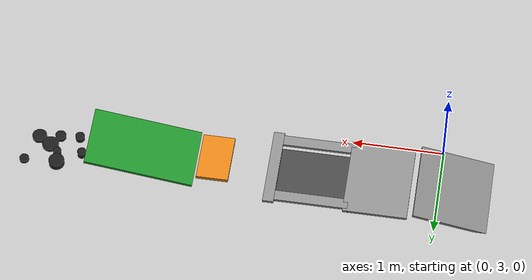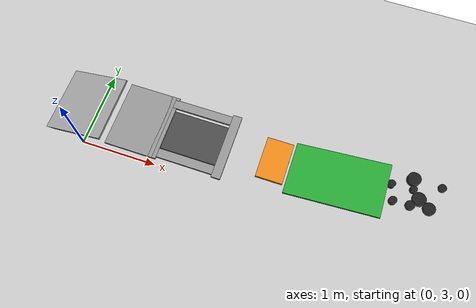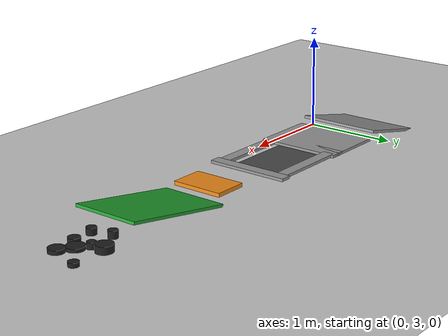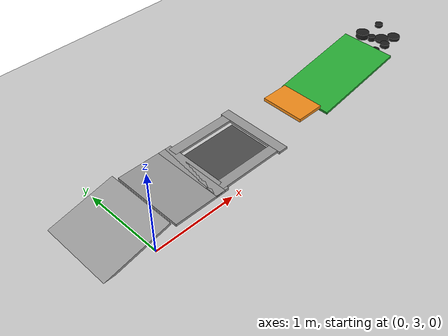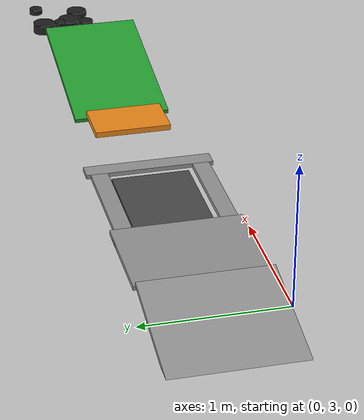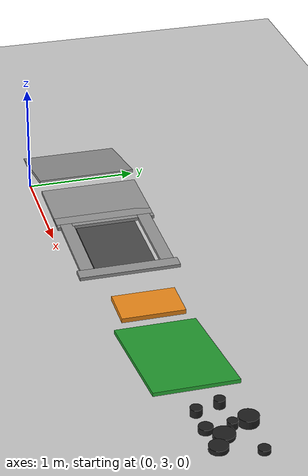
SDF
<sdf version="1.7">
 <world name="default">
  <model name="ground_plane">
   <static>1</static>
   <link name="link">
    <collision name="collision">
     <geometry><plane><normal>0 0 1</normal><size>100 100</size></plane></geometry>
     <surface><friction><ode><mu>100</mu><mu2>50</mu2></ode></friction></surface>
    </collision>
    <visual name="visual">
     <cast_shadows>0</cast_shadows>
     <geometry><plane><normal>0 0 1</normal><size>100 100</size></plane></geometry>
     <material>
      <script><uri>file://media/materials/scripts/gazebo.material</uri><name>Gazebo/Grey</name></script>
     </material>
    </visual>
   </link>
  </model>
  <model name="rough_terrain_test_zone">
   <static>true</static>
   <pose>1.500 3.500 0 0 0 0.000000</pose>
   <link name="entry_ramp">
    <pose>-1.750 0.000 0.050 0.000000 -0.220000 0.000000</pose>
    <collision name="entry_ramp_collision">
     <geometry><box><size>1.000 0.900 0.030</size></box></geometry>
    </collision>
    <visual name="entry_ramp_visual">
     <geometry><box><size>1.000 0.900 0.030</size></box></geometry>
     <material>
      <script><uri>file://media/materials/scripts/gazebo.material</uri><name>Gazebo/Grey</name></script>
     </material>
    </visual>
   </link>
   <link name="flat_deck_before_pit">
    <pose>-0.850 0.000 0.085 0.000000 0.000000 0.000000</pose>
    <collision name="flat_deck_before_pit_collision">
     <geometry><box><size>0.700 0.900 0.030</size></box></geometry>
    </collision>
    <visual name="flat_deck_before_pit_visual">
     <geometry><box><size>0.700 0.900 0.030</size></box></geometry>
     <material>
      <script><uri>file://media/materials/scripts/gazebo.material</uri><name>Gazebo/Grey</name></script>
     </material>
    </visual>
   </link>
   <link name="pit_left_lip">
    <pose>-0.150 0.360 0.085 0.000000 0.000000 0.000000</pose>
    <collision name="pit_left_lip_collision">
     <geometry><box><size>0.800 0.120 0.030</size></box></geometry>
    </collision>
    <visual name="pit_left_lip_visual">
     <geometry><box><size>0.800 0.120 0.030</size></box></geometry>
     <material>
      <script><uri>file://media/materials/scripts/gazebo.material</uri><name>Gazebo/Grey</name></script>
     </material>
    </visual>
   </link>
   <link name="pit_right_lip">
    <pose>-0.150 -0.360 0.085 0.000000 0.000000 0.000000</pose>
    <collision name="pit_right_lip_collision">
     <geometry><box><size>0.800 0.120 0.030</size></box></geometry>
    </collision>
    <visual name="pit_right_lip_visual">
     <geometry><box><size>0.800 0.120 0.030</size></box></geometry>
     <material>
      <script><uri>file://media/materials/scripts/gazebo.material</uri><name>Gazebo/Grey</name></script>
     </material>
    </visual>
   </link>
   <link name="pit_front_lip">
    <pose>0.310 0.000 0.085 0.000000 0.000000 0.000000</pose>
    <collision name="pit_front_lip_collision">
     <geometry><box><size>0.120 0.900 0.030</size></box></geometry>
    </collision>
    <visual name="pit_front_lip_visual">
     <geometry><box><size>0.120 0.900 0.030</size></box></geometry>
     <material>
      <script><uri>file://media/materials/scripts/gazebo.material</uri><name>Gazebo/Grey</name></script>
     </material>
    </visual>
   </link>
   <link name="pit_rear_lip">
    <pose>-0.610 0.000 0.085 0.000000 0.000000 0.000000</pose>
    <collision name="pit_rear_lip_collision">
     <geometry><box><size>0.120 0.900 0.030</size></box></geometry>
    </collision>
    <visual name="pit_rear_lip_visual">
     <geometry><box><size>0.120 0.900 0.030</size></box></geometry>
     <material>
      <script><uri>file://media/materials/scripts/gazebo.material</uri><name>Gazebo/Grey</name></script>
     </material>
    </visual>
   </link>
   <link name="pit_bottom">
    <pose>-0.150 0.000 0.040 0.000000 0.000000 0.000000</pose>
    <collision name="pit_bottom_collision">
     <geometry><box><size>0.800 0.550 0.020</size></box></geometry>
    </collision>
    <visual name="pit_bottom_visual">
     <geometry><box><size>0.800 0.550 0.020</size></box></geometry>
     <material>
      <script><uri>file://media/materials/scripts/gazebo.material</uri><name>Gazebo/DarkGrey</name></script>
     </material>
    </visual>
   </link>
   <link name="bump">
    <pose>0.950 0.000 0.120 0.000000 0.000000 0.000000</pose>
    <collision name="bump_collision"><geometry><box><size>0.350 0.550 0.040</size></box></geometry></collision>
    <visual name="bump_visual">
     <geometry><box><size>0.350 0.550 0.040</size></box></geometry>
     <material>
      <script><uri>file://media/materials/scripts/gazebo.material</uri><name>Gazebo/Orange</name></script>
     </material>
    </visual>
   </link>
   <link name="slope_plate">
    <pose>1.750 0.000 0.152 0.000000 -0.174533 0.000000</pose>
    <collision name="slope_plate_collision">
     <geometry><box><size>1.200 0.700 0.030</size></box></geometry>
    </collision>
    <visual name="slope_plate_visual">
     <geometry><box><size>1.200 0.700 0.030</size></box></geometry>
     <material>
      <script><uri>file://media/materials/scripts/gazebo.material</uri><name>Gazebo/Green</name></script>
     </material>
    </visual>
   </link>
   <link name="gravel_1">
    <pose>2.404 0.160 0.137 0 0 0</pose>
    <collision name="gravel_1_collision">
     <geometry><cylinder><radius>0.047</radius><length>0.075</length></cylinder></geometry>
    </collision>
    <visual name="gravel_1_visual">
     <geometry><cylinder><radius>0.047</radius><length>0.075</length></cylinder></geometry>
     <material>
      <script><uri>file://media/materials/scripts/gazebo.material</uri><name>Gazebo/Black</name></script>
     </material>
    </visual>
   </link>
   <link name="gravel_2">
    <pose>2.656 0.308 0.136 0 0 0</pose>
    <collision name="gravel_2_collision">
     <geometry><cylinder><radius>0.084</radius><length>0.072</length></cylinder></geometry>
    </collision>
    <visual name="gravel_2_visual">
     <geometry><cylinder><radius>0.084</radius><length>0.072</length></cylinder></geometry>
     <material>
      <script><uri>file://media/materials/scripts/gazebo.material</uri><name>Gazebo/Black</name></script>
     </material>
    </visual>
   </link>
   <link name="gravel_3">
    <pose>2.904 -0.004 0.120 0 0 0</pose>
    <collision name="gravel_3_collision">
     <geometry><cylinder><radius>0.078</radius><length>0.041</length></cylinder></geometry>
    </collision>
    <visual name="gravel_3_visual">
     <geometry><cylinder><radius>0.078</radius><length>0.041</length></cylinder></geometry>
     <material>
      <script><uri>file://media/materials/scripts/gazebo.material</uri><name>Gazebo/Black</name></script>
     </material>
    </visual>
   </link>
   <link name="gravel_4">
    <pose>2.460 -0.043 0.134 0 0 0</pose>
    <collision name="gravel_4_collision">
     <geometry><cylinder><radius>0.049</radius><length>0.068</length></cylinder></geometry>
    </collision>
    <visual name="gravel_4_visual">
     <geometry><cylinder><radius>0.049</radius><length>0.068</length></cylinder></geometry>
     <material>
      <script><uri>file://media/materials/scripts/gazebo.material</uri><name>Gazebo/Black</name></script>
     </material>
    </visual>
   </link>
   <link name="gravel_5">
    <pose>3.014 0.312 0.120 0 0 0</pose>
    <collision name="gravel_5_collision">
     <geometry><cylinder><radius>0.050</radius><length>0.041</length></cylinder></geometry>
    </collision>
    <visual name="gravel_5_visual">
     <geometry><cylinder><radius>0.050</radius><length>0.041</length></cylinder></geometry>
     <material>
      <script><uri>file://media/materials/scripts/gazebo.material</uri><name>Gazebo/Black</name></script>
     </material>
    </visual>
   </link>
   <link name="gravel_6">
    <pose>2.768 0.081 0.117 0 0 0</pose>
    <collision name="gravel_6_collision">
     <geometry><cylinder><radius>0.089</radius><length>0.034</length></cylinder></geometry>
    </collision>
    <visual name="gravel_6_visual">
     <geometry><cylinder><radius>0.089</radius><length>0.034</length></cylinder></geometry>
     <material>
      <script><uri>file://media/materials/scripts/gazebo.material</uri><name>Gazebo/Black</name></script>
     </material>
    </visual>
   </link>
   <link name="gravel_7">
    <pose>2.674 -0.033 0.125 0 0 0</pose>
    <collision name="gravel_7_collision">
     <geometry><cylinder><radius>0.058</radius><length>0.050</length></cylinder></geometry>
    </collision>
    <visual name="gravel_7_visual">
     <geometry><cylinder><radius>0.058</radius><length>0.050</length></cylinder></geometry>
     <material>
      <script><uri>file://media/materials/scripts/gazebo.material</uri><name>Gazebo/Black</name></script>
     </material>
    </visual>
   </link>
   <link name="gravel_8">
    <pose>2.675 0.176 0.132 0 0 0</pose>
    <collision name="gravel_8_collision">
     <geometry><cylinder><radius>0.044</radius><length>0.063</length></cylinder></geometry>
    </collision>
    <visual name="gravel_8_visual">
     <geometry><cylinder><radius>0.044</radius><length>0.063</length></cylinder></geometry>
     <material>
      <script><uri>file://media/materials/scripts/gazebo.material</uri><name>Gazebo/Black</name></script>
     </material>
    </visual>
   </link>
  </model>
 </world>
</sdf>
